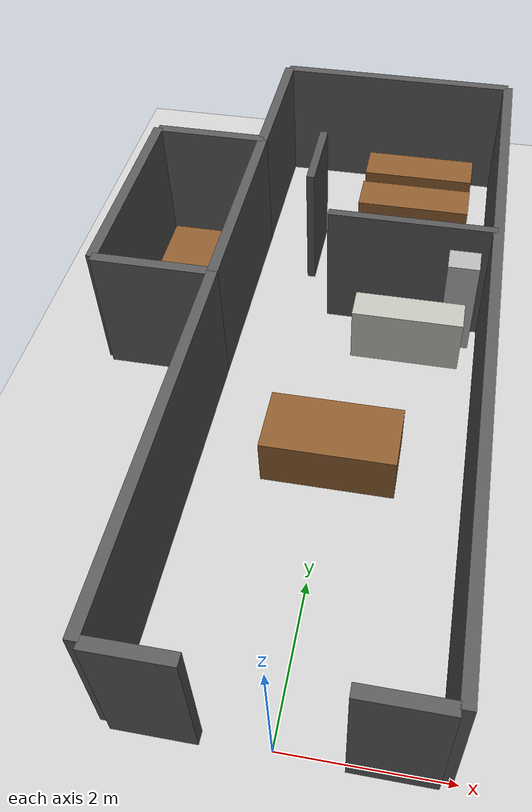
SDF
<?xml version="1.0" ?>
<sdf version="1.6">
  <world name="office_patrol_world">
    <physics name="default_physics" type="ode">
      <max_step_size>0.001</max_step_size>
      <real_time_factor>1.0</real_time_factor>
      <real_time_update_rate>1000</real_time_update_rate>
    </physics>

    <include>
      <uri>model://sun</uri>
    </include>
    <include>
      <uri>model://ground_plane</uri>
    </include>

    <scene>
      <ambient>0.15 0.15 0.18 1</ambient>
      <background>0.02 0.02 0.03 1</background>
    </scene>

    <!-- 기준: 도면 전체 약 3.72m x 10.44m, 벽 두께 0.15m, 높이 2.0m -->
    <!-- 좌표 기준: 중앙 통로/사무실을 x=0 기준, y=0은 입구 쪽 -->

    <!-- ===================== WALL HELPER MODELS ===================== -->
    <!-- 외벽: 오른쪽 긴 벽 -->
    <model name="wall_right_outer">
      <static>true</static>
      <pose>1.86 5.22 1 0 0 0</pose>
      <link name="link"><collision name="col"><geometry><box><size>0.15 10.44 2.0</size></box></geometry></collision><visual name="vis"><geometry><box><size>0.15 10.44 2.0</size></box></geometry><material><ambient>0.35 0.35 0.35 1</ambient><diffuse>0.35 0.35 0.35 1</diffuse></material></visual></link>
    </model>

    <!-- 외벽: 아래쪽 입구 벽 좌/우 -->
    <model name="wall_bottom_left">
      <static>true</static>
      <pose>-1.30 0 1 0 0 0</pose>
      <link name="link"><collision name="col"><geometry><box><size>1.00 0.15 2.0</size></box></geometry></collision><visual name="vis"><geometry><box><size>1.00 0.15 2.0</size></box></geometry><material><ambient>0.35 0.35 0.35 1</ambient><diffuse>0.35 0.35 0.35 1</diffuse></material></visual></link>
    </model>
    <model name="wall_bottom_right">
      <static>true</static>
      <pose>1.30 0 1 0 0 0</pose>
      <link name="link"><collision name="col"><geometry><box><size>1.00 0.15 2.0</size></box></geometry></collision><visual name="vis"><geometry><box><size>1.00 0.15 2.0</size></box></geometry><material><ambient>0.35 0.35 0.35 1</ambient><diffuse>0.35 0.35 0.35 1</diffuse></material></visual></link>
    </model>

    <!-- 외벽: 왼쪽 아래 긴 벽, 중간 사무실 때문에 꺾이는 구조 -->
    <model name="wall_left_lower_outer">
      <static>true</static>
      <pose>-1.86 2.60 1 0 0 0</pose>
      <link name="link"><collision name="col"><geometry><box><size>0.15 5.20 2.0</size></box></geometry></collision><visual name="vis"><geometry><box><size>0.15 5.20 2.0</size></box></geometry><material><ambient>0.35 0.35 0.35 1</ambient><diffuse>0.35 0.35 0.35 1</diffuse></material></visual></link>
    </model>

    <!-- 왼쪽 돌출 대표실 외벽 -->
    <model name="wall_left_room_outer">
      <static>true</static>
      <pose>-3.55 6.75 1 0 0 0</pose>
      <link name="link"><collision name="col"><geometry><box><size>0.15 3.10 2.0</size></box></geometry></collision><visual name="vis"><geometry><box><size>0.15 3.10 2.0</size></box></geometry><material><ambient>0.35 0.35 0.35 1</ambient><diffuse>0.35 0.35 0.35 1</diffuse></material></visual></link>
    </model>
    <model name="wall_left_room_top">
      <static>true</static>
      <pose>-2.70 8.30 1 0 0 0</pose>
      <link name="link"><collision name="col"><geometry><box><size>1.70 0.15 2.0</size></box></geometry></collision><visual name="vis"><geometry><box><size>1.70 0.15 2.0</size></box></geometry><material><ambient>0.35 0.35 0.35 1</ambient><diffuse>0.35 0.35 0.35 1</diffuse></material></visual></link>
    </model>
    <model name="wall_left_room_bottom">
      <static>true</static>
      <pose>-2.70 5.20 1 0 0 0</pose>
      <link name="link"><collision name="col"><geometry><box><size>1.70 0.15 2.0</size></box></geometry></collision><visual name="vis"><geometry><box><size>1.70 0.15 2.0</size></box></geometry><material><ambient>0.35 0.35 0.35 1</ambient><diffuse>0.35 0.35 0.35 1</diffuse></material></visual></link>
    </model>
    <model name="wall_left_room_inner">
      <static>true</static>
      <pose>-1.86 6.75 1 0 0 0</pose>
      <link name="link"><collision name="col"><geometry><box><size>0.15 3.10 2.0</size></box></geometry></collision><visual name="vis"><geometry><box><size>0.15 3.10 2.0</size></box></geometry><material><ambient>0.35 0.35 0.35 1</ambient><diffuse>0.35 0.35 0.35 1</diffuse></material></visual></link>
    </model>

    <!-- 상단 큰 사무공간 외벽 -->
    <model name="wall_top_outer">
      <static>true</static>
      <pose>0 10.44 1 0 0 0</pose>
      <link name="link"><collision name="col"><geometry><box><size>3.72 0.15 2.0</size></box></geometry></collision><visual name="vis"><geometry><box><size>3.72 0.15 2.0</size></box></geometry><material><ambient>0.35 0.35 0.35 1</ambient><diffuse>0.35 0.35 0.35 1</diffuse></material></visual></link>
    </model>
    <model name="wall_left_upper_outer">
      <static>true</static>
      <pose>-1.86 9.35 1 0 0 0</pose>
      <link name="link"><collision name="col"><geometry><box><size>0.15 2.18 2.0</size></box></geometry></collision><visual name="vis"><geometry><box><size>0.15 2.18 2.0</size></box></geometry><material><ambient>0.35 0.35 0.35 1</ambient><diffuse>0.35 0.35 0.35 1</diffuse></material></visual></link>
    </model>

    <!-- 내부 벽: 싱크대/사무공간 구분 -->
    <model name="wall_kitchen_top_partition">
      <static>true</static>
      <pose>0.65 6.70 1 0 0 0</pose>
      <link name="link"><collision name="col"><geometry><box><size>2.40 0.12 2.0</size></box></geometry></collision><visual name="vis"><geometry><box><size>2.40 0.12 2.0</size></box></geometry><material><ambient>0.33 0.33 0.33 1</ambient><diffuse>0.33 0.33 0.33 1</diffuse></material></visual></link>
    </model>

    <model name="wall_office_partition">
      <static>true</static>
      <pose>-0.95 8.05 1 0 0 0</pose>
      <link name="link"><collision name="col"><geometry><box><size>0.12 1.20 2.0</size></box></geometry></collision><visual name="vis"><geometry><box><size>0.12 1.20 2.0</size></box></geometry><material><ambient>0.33 0.33 0.33 1</ambient><diffuse>0.33 0.33 0.33 1</diffuse></material></visual></link>
    </model>

    <!-- ===================== FURNITURE ===================== -->
    <!-- 회의실 테이블 -->
    <model name="meeting_table">
      <static>true</static>
      <pose>0 3.85 0.38 0 0 0</pose>
      <link name="link"><collision name="col"><geometry><box><size>1.8 0.9 0.75</size></box></geometry></collision><visual name="vis"><geometry><box><size>1.8 0.9 0.75</size></box></geometry><material><ambient>0.55 0.36 0.18 1</ambient><diffuse>0.55 0.36 0.18 1</diffuse></material></visual></link>
    </model>

    <!-- 상단 사무실 책상 2개 -->
    <model name="office_desk_1"><static>true</static><pose>0.55 8.85 0.38 0 0 0</pose><link name="link"><collision name="col"><geometry><box><size>1.8 0.6 0.75</size></box></geometry></collision><visual name="vis"><geometry><box><size>1.8 0.6 0.75</size></box></geometry><material><ambient>0.55 0.36 0.18 1</ambient><diffuse>0.55 0.36 0.18 1</diffuse></material></visual></link></model>
    <model name="office_desk_2"><static>true</static><pose>0.55 9.70 0.38 0 0 0</pose><link name="link"><collision name="col"><geometry><box><size>1.8 0.6 0.75</size></box></geometry></collision><visual name="vis"><geometry><box><size>1.8 0.6 0.75</size></box></geometry><material><ambient>0.55 0.36 0.18 1</ambient><diffuse>0.55 0.36 0.18 1</diffuse></material></visual></link></model>

    <!-- 대표실 책상 -->
    <model name="ceo_desk"><static>true</static><pose>-2.75 6.65 0.38 0 0 1.5708</pose><link name="link"><collision name="col"><geometry><box><size>1.6 0.8 0.75</size></box></geometry></collision><visual name="vis"><geometry><box><size>1.6 0.8 0.75</size></box></geometry><material><ambient>0.55 0.36 0.18 1</ambient><diffuse>0.55 0.36 0.18 1</diffuse></material></visual></link></model>

    <!-- 싱크대/냉장고 -->
    <model name="sink_counter"><static>true</static><pose>0.75 6.05 0.45 0 0 0</pose><link name="link"><collision name="col"><geometry><box><size>1.6 0.45 0.9</size></box></geometry></collision><visual name="vis"><geometry><box><size>1.6 0.45 0.9</size></box></geometry><material><ambient>0.75 0.75 0.72 1</ambient><diffuse>0.75 0.75 0.72 1</diffuse></material></visual></link></model>
    <model name="fridge"><static>true</static><pose>1.45 6.55 0.8 0 0 0</pose><link name="link"><collision name="col"><geometry><box><size>0.45 0.55 1.6</size></box></geometry></collision><visual name="vis"><geometry><box><size>0.45 0.55 1.6</size></box></geometry><material><ambient>0.70 0.70 0.70 1</ambient><diffuse>0.70 0.70 0.70 1</diffuse></material></visual></link></model>

    <!-- 화재 감지 테스트용 불빛 오브젝트: 주황색 박스 + 포인트라이트 -->
    <model name="fire_target">
      <static>true</static>
      <pose>1.2 8.2 0.25 0 0 0</pose>
      <link name="link">
        <collision name="col"><geometry><box><size>0.25 0.25 0.5</size></box></geometry></collision>
        <visual name="vis"><geometry><box><size>0.25 0.25 0.5</size></box></geometry><material><ambient>1.0 0.20 0.02 1</ambient><diffuse>1.0 0.25 0.02 1</diffuse><emissive>1.0 0.15 0.0 1</emissive></material></visual>
      </link>
    </model>

    <light name="fire_light" type="point">
      <pose>1.2 8.2 1.0 0 0 0</pose>
      <diffuse>1 0.25 0.02 1</diffuse>
      <specular>1 0.2 0.02 1</specular>
      <attenuation>
        <range>1</range>
        <constant>0.5</constant>
        <linear>0.1</linear>
        <quadratic>0.01</quadratic>
      </attenuation>
      <cast_shadows>true</cast_shadows>
    </light>

  </world>
</sdf>
